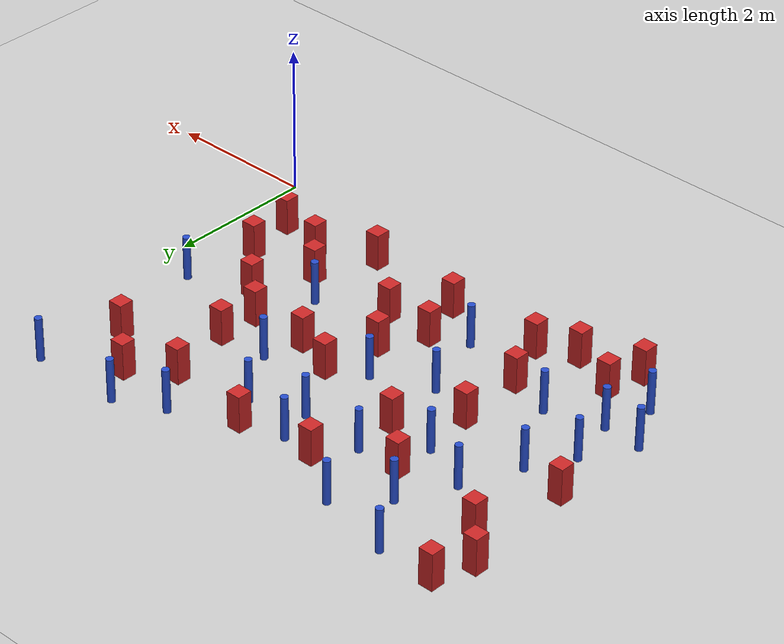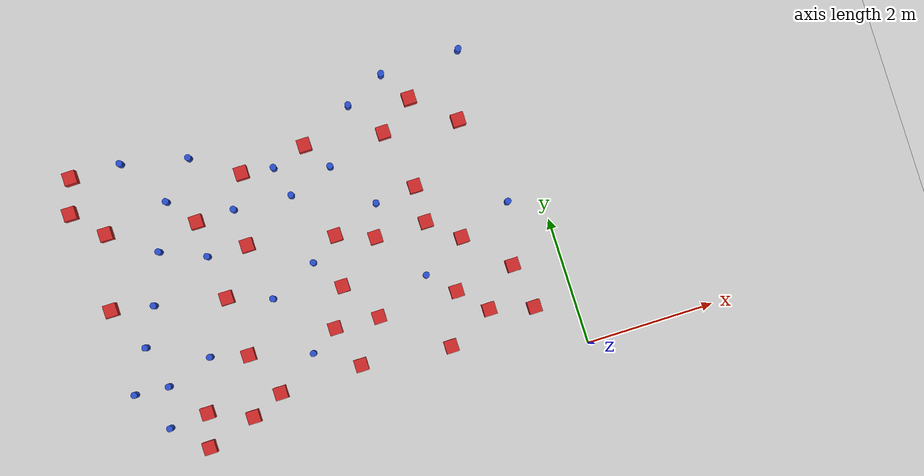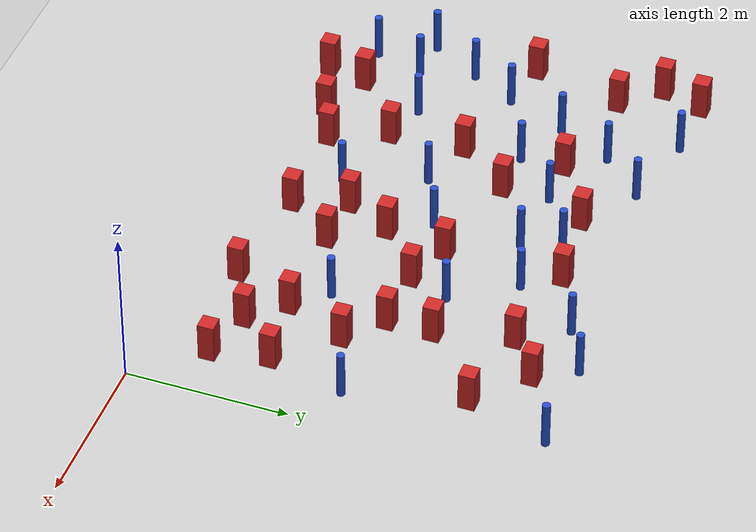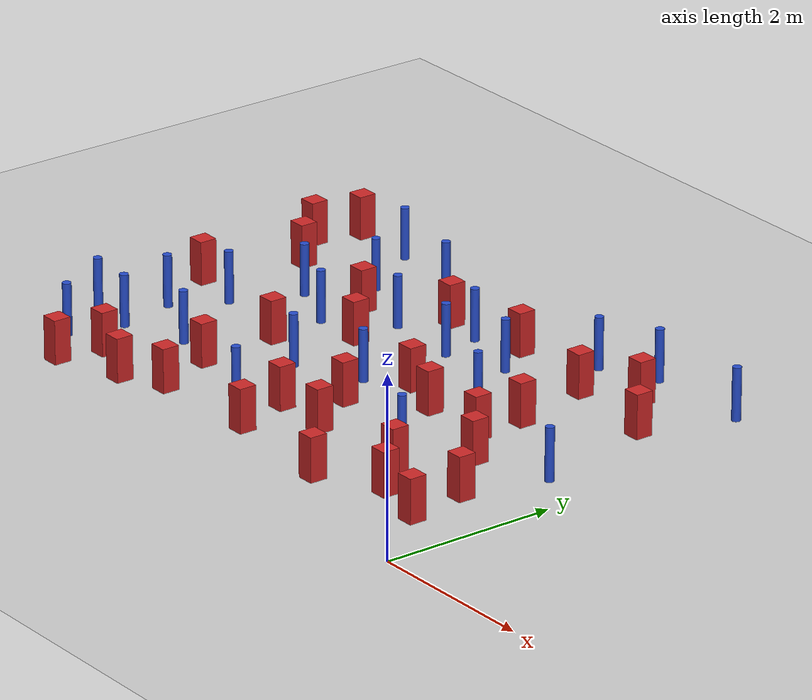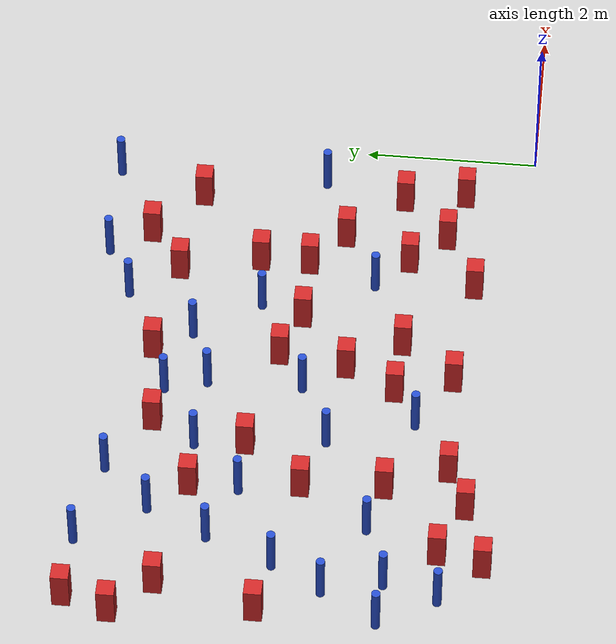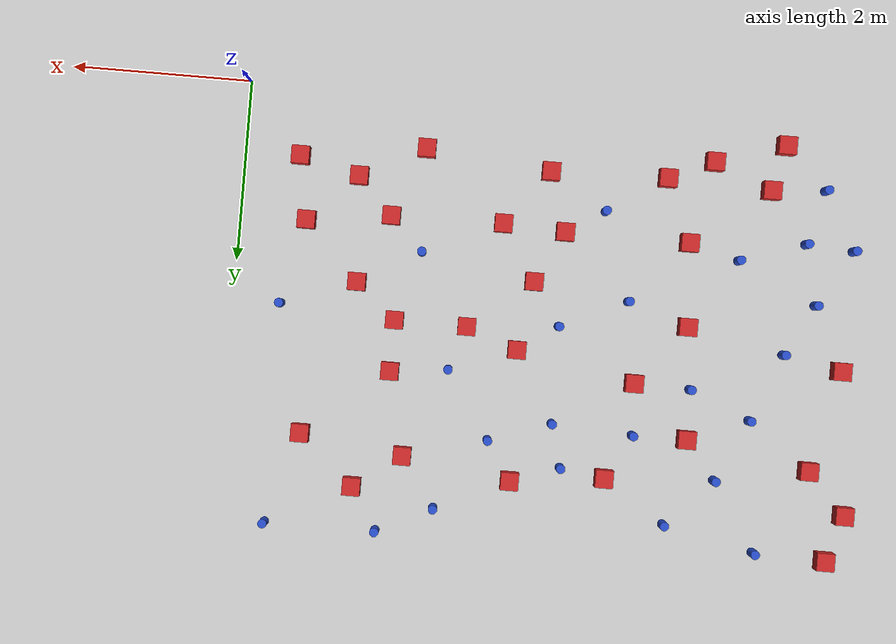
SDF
<sdf version="1.6">
 <world name="default">
  <model name="ground_plane">
   <static>1</static>
   <link name="link">
    <collision name="collision">
     <geometry><plane><normal>0 0 1</normal><size>100 100</size></plane></geometry>
     <surface><friction><ode><mu>100</mu><mu2>50</mu2></ode></friction></surface>
    </collision>
    <visual name="visual">
     <cast_shadows>0</cast_shadows>
     <geometry><plane><normal>0 0 1</normal><size>100 100</size></plane></geometry>
     <material>
      <ambient>1.0 1.0 1.0 1.0</ambient>
      <diffuse>0.8 0.8 0.8 1.0</diffuse>
      <specular>0.01 0.01 0.01 1.000000</specular>
     </material>
    </visual>
   </link>
  </model>
  <model name="square_post_obstacle8">
   <static>true</static>
   <pose>-3.33779751868 1.97403215349 -6.11067671241e-07 -5.50515727128e-06 -8.79689657224e-07 2.37013304536e-05</pose>
   <link name="link">
    <pose>0 0 0.25 0 -0 0</pose>
    <inertial>
     <mass>100</mass>
     <inertia>
      <ixx>0.166667</ixx>
      <ixy>0</ixy>
      <ixz>0</ixz>
      <iyy>0.166667</iyy>
      <iyz>0</iyz>
      <izz>0.166667</izz>
     </inertia>
    </inertial>
    <collision name="collision"><geometry><box><size>.2 .2 .5</size></box></geometry></collision>
    <visual name="visual">
     <geometry><box><size>.2 .2 .5</size></box></geometry>
     <material>
      <script><name>Gazebo/Red</name><uri>file://media/materials/scripts/gazebo.material</uri></script>
     </material>
    </visual>
   </link>
  </model>
  <model name="pole_obstacle6">
   <static>true</static>
   <pose>-6.01828911676 4.78866185865 -9.47619616065e-06 5.49618799737e-07 2.36310414037e-07 -1.55090534814e-07</pose>
   <link name="link">
    <pose>0 0 0.3 0 -0 0</pose>
    <inertial>
     <mass>1</mass>
     <inertia><ixx>0.145833</ixx><ixy>0</ixy><ixz>0</ixz><iyy>0.145833</iyy><iyz>0</iyz><izz>0.125</izz></inertia>
    </inertial>
    <collision name="collision">
     <geometry><cylinder><radius>0.05</radius><length>.6</length></cylinder></geometry>
    </collision>
    <visual name="visual">
     <geometry><cylinder><radius>0.05</radius><length>.6</length></cylinder></geometry>
     <material>
      <script><name>Gazebo/Blue</name><uri>file://media/materials/scripts/gazebo.material</uri></script>
     </material>
    </visual>
   </link>
  </model>
  <model name="square_post_obstacle10">
   <static>true</static>
   <pose>-4.5397672499 3.01273756281 -6.11067671241e-07 -5.50515727128e-06 -8.79689657224e-07 2.37013304536e-05</pose>
   <link name="link">
    <pose>0 0 0.25 0 -0 0</pose>
    <inertial>
     <mass>100</mass>
     <inertia>
      <ixx>0.166667</ixx>
      <ixy>0</ixy>
      <ixz>0</ixz>
      <iyy>0.166667</iyy>
      <iyz>0</iyz>
      <izz>0.166667</izz>
     </inertia>
    </inertial>
    <collision name="collision"><geometry><box><size>.2 .2 .5</size></box></geometry></collision>
    <visual name="visual">
     <geometry><box><size>.2 .2 .5</size></box></geometry>
     <material>
      <script><name>Gazebo/Red</name><uri>file://media/materials/scripts/gazebo.material</uri></script>
     </material>
    </visual>
   </link>
  </model>
  <model name="square_post_obstacle12">
   <static>true</static>
   <pose>-6.81449634374 4.81211950419 -6.11067671241e-07 -5.50515727128e-06 -8.79689657224e-07 2.37013304536e-05</pose>
   <link name="link">
    <pose>0 0 0.25 0 -0 0</pose>
    <inertial>
     <mass>100</mass>
     <inertia>
      <ixx>0.166667</ixx>
      <ixy>0</ixy>
      <ixz>0</ixz>
      <iyy>0.166667</iyy>
      <iyz>0</iyz>
      <izz>0.166667</izz>
     </inertia>
    </inertial>
    <collision name="collision"><geometry><box><size>.2 .2 .5</size></box></geometry></collision>
    <visual name="visual">
     <geometry><box><size>.2 .2 .5</size></box></geometry>
     <material>
      <script><name>Gazebo/Red</name><uri>file://media/materials/scripts/gazebo.material</uri></script>
     </material>
    </visual>
   </link>
  </model>
  <model name="square_post_obstacle14">
   <static>true</static>
   <pose>-1.82244334132 2.52893783839 -6.11067671241e-07 -5.50515727128e-06 -8.79689657224e-07 2.37013304536e-05</pose>
   <link name="link">
    <pose>0 0 0.25 0 -0 0</pose>
    <inertial>
     <mass>100</mass>
     <inertia>
      <ixx>0.166667</ixx>
      <ixy>0</ixy>
      <ixz>0</ixz>
      <iyy>0.166667</iyy>
      <iyz>0</iyz>
      <izz>0.166667</izz>
     </inertia>
    </inertial>
    <collision name="collision"><geometry><box><size>.2 .2 .5</size></box></geometry></collision>
    <visual name="visual">
     <geometry><box><size>.2 .2 .5</size></box></geometry>
     <material>
      <script><name>Gazebo/Red</name><uri>file://media/materials/scripts/gazebo.material</uri></script>
     </material>
    </visual>
   </link>
  </model>
  <model name="square_post_obstacle25">
   <static>true</static>
   <pose>-0.753819855754 1.49309940718 -6.11067671241e-07 -5.50515727128e-06 -8.79689657224e-07 2.37013304536e-05</pose>
   <link name="link">
    <pose>0 0 0.25 0 -0 0</pose>
    <inertial>
     <mass>100</mass>
     <inertia>
      <ixx>0.166667</ixx>
      <ixy>0</ixy>
      <ixz>0</ixz>
      <iyy>0.166667</iyy>
      <iyz>0</iyz>
      <izz>0.166667</izz>
     </inertia>
    </inertial>
    <collision name="collision"><geometry><box><size>.2 .2 .5</size></box></geometry></collision>
    <visual name="visual">
     <geometry><box><size>.2 .2 .5</size></box></geometry>
     <material>
      <script><name>Gazebo/Red</name><uri>file://media/materials/scripts/gazebo.material</uri></script>
     </material>
    </visual>
   </link>
  </model>
  <model name="pole_obstacle23">
   <static>true</static>
   <pose>-6.50298891282 0.69512425656 -9.47619616065e-06 5.49618799737e-07 2.36310414061e-07 -1.550905348e-07</pose>
   <link name="link">
    <pose>0 0 0.3 0 -0 0</pose>
    <inertial>
     <mass>1</mass>
     <inertia><ixx>0.145833</ixx><ixy>0</ixy><ixz>0</ixz><iyy>0.145833</iyy><iyz>0</iyz><izz>0.125</izz></inertia>
    </inertial>
    <collision name="collision">
     <geometry><cylinder><radius>0.05</radius><length>.6</length></cylinder></geometry>
    </collision>
    <visual name="visual">
     <geometry><cylinder><radius>0.05</radius><length>.6</length></cylinder></geometry>
     <material>
      <script><name>Gazebo/Blue</name><uri>file://media/materials/scripts/gazebo.material</uri></script>
     </material>
    </visual>
   </link>
  </model>
  <model name="pole_obstacle26">
   <static>true</static>
   <pose>-0.554028043169 4.89492762111 -9.47619616065e-06 5.49618799737e-07 2.36310414065e-07 -1.55090534796e-07</pose>
   <link name="link">
    <pose>0 0 0.3 0 -0 0</pose>
    <inertial>
     <mass>1</mass>
     <inertia><ixx>0.145833</ixx><ixy>0</ixy><ixz>0</ixz><iyy>0.145833</iyy><iyz>0</iyz><izz>0.125</izz></inertia>
    </inertial>
    <collision name="collision">
     <geometry><cylinder><radius>0.05</radius><length>.6</length></cylinder></geometry>
    </collision>
    <visual name="visual">
     <geometry><cylinder><radius>0.05</radius><length>.6</length></cylinder></geometry>
     <material>
      <script><name>Gazebo/Blue</name><uri>file://media/materials/scripts/gazebo.material</uri></script>
     </material>
    </visual>
   </link>
  </model>
  <model name="square_post_obstacle32">
   <static>true</static>
   <pose>-5.89141951244 0.744269989678 -6.11067671241e-07 -5.50515727128e-06 -8.79689657224e-07 2.37013304536e-05</pose>
   <link name="link">
    <pose>0 0 0.25 0 -0 0</pose>
    <inertial>
     <mass>100</mass>
     <inertia>
      <ixx>0.166667</ixx>
      <ixy>0</ixy>
      <ixz>0</ixz>
      <iyy>0.166667</iyy>
      <iyz>0</iyz>
      <izz>0.166667</izz>
     </inertia>
    </inertial>
    <collision name="collision"><geometry><box><size>.2 .2 .5</size></box></geometry></collision>
    <visual name="visual">
     <geometry><box><size>.2 .2 .5</size></box></geometry>
     <material>
      <script><name>Gazebo/Red</name><uri>file://media/materials/scripts/gazebo.material</uri></script>
     </material>
    </visual>
   </link>
  </model>
  <model name="square_post_obstacle33">
   <static>true</static>
   <pose>-3.42648207523 0.735322370239 -6.11067671241e-07 -5.50515727128e-06 -8.79689657224e-07 2.37013304536e-05</pose>
   <link name="link">
    <pose>0 0 0.25 0 -0 0</pose>
    <inertial>
     <mass>100</mass>
     <inertia>
      <ixx>0.166667</ixx>
      <ixy>0</ixy>
      <ixz>0</ixz>
      <iyy>0.166667</iyy>
      <iyz>0</iyz>
      <izz>0.166667</izz>
     </inertia>
    </inertial>
    <collision name="collision"><geometry><box><size>.2 .2 .5</size></box></geometry></collision>
    <visual name="visual">
     <geometry><box><size>.2 .2 .5</size></box></geometry>
     <material>
      <script><name>Gazebo/Red</name><uri>file://media/materials/scripts/gazebo.material</uri></script>
     </material>
    </visual>
   </link>
  </model>
  <model name="pole_obstacle31">
   <static>true</static>
   <pose>-4.07116642697 1.12520285323 -9.47619616065e-06 5.49618799738e-07 2.36310414071e-07 -1.55090534796e-07</pose>
   <link name="link">
    <pose>0 0 0.3 0 -0 0</pose>
    <inertial>
     <mass>1</mass>
     <inertia><ixx>0.145833</ixx><ixy>0</ixy><ixz>0</ixz><iyy>0.145833</iyy><iyz>0</iyz><izz>0.125</izz></inertia>
    </inertial>
    <collision name="collision">
     <geometry><cylinder><radius>0.05</radius><length>.6</length></cylinder></geometry>
    </collision>
    <visual name="visual">
     <geometry><cylinder><radius>0.05</radius><length>.6</length></cylinder></geometry>
     <material>
      <script><name>Gazebo/Blue</name><uri>file://media/materials/scripts/gazebo.material</uri></script>
     </material>
    </visual>
   </link>
  </model>
  <model name="pole_obstacle32">
   <static>true</static>
   <pose>-3.79601591526 4.02080855263 -9.47619616065e-06 5.49618799738e-07 2.36310414077e-07 -1.55090534791e-07</pose>
   <link name="link">
    <pose>0 0 0.3 0 -0 0</pose>
    <inertial>
     <mass>1</mass>
     <inertia><ixx>0.145833</ixx><ixy>0</ixy><ixz>0</ixz><iyy>0.145833</iyy><iyz>0</iyz><izz>0.125</izz></inertia>
    </inertial>
    <collision name="collision">
     <geometry><cylinder><radius>0.05</radius><length>.6</length></cylinder></geometry>
    </collision>
    <visual name="visual">
     <geometry><cylinder><radius>0.05</radius><length>.6</length></cylinder></geometry>
     <material>
      <script><name>Gazebo/Blue</name><uri>file://media/materials/scripts/gazebo.material</uri></script>
     </material>
    </visual>
   </link>
  </model>
  <model name="pole_obstacle39">
   <static>true</static>
   <pose>-6.33148483358 1.30894092357 -9.47619616065e-06 5.49618799738e-07 2.36310414071e-07 -1.55090534796e-07</pose>
   <link name="link">
    <pose>0 0 0.3 0 -0 0</pose>
    <inertial>
     <mass>1</mass>
     <inertia><ixx>0.145833</ixx><ixy>0</ixy><ixz>0</ixz><iyy>0.145833</iyy><iyz>0</iyz><izz>0.125</izz></inertia>
    </inertial>
    <collision name="collision">
     <geometry><cylinder><radius>0.05</radius><length>.6</length></cylinder></geometry>
    </collision>
    <visual name="visual">
     <geometry><cylinder><radius>0.05</radius><length>.6</length></cylinder></geometry>
     <material>
      <script><name>Gazebo/Blue</name><uri>file://media/materials/scripts/gazebo.material</uri></script>
     </material>
    </visual>
   </link>
  </model>
  <model name="pole_obstacle40">
   <static>true</static>
   <pose>-5.85839685836 3.32301820173 -9.47619616065e-06 5.49618799738e-07 2.36310414051e-07 -1.55090534805e-07</pose>
   <link name="link">
    <pose>0 0 0.3 0 -0 0</pose>
    <inertial>
     <mass>1</mass>
     <inertia><ixx>0.145833</ixx><ixy>0</ixy><ixz>0</ixz><iyy>0.145833</iyy><iyz>0</iyz><izz>0.125</izz></inertia>
    </inertial>
    <collision name="collision">
     <geometry><cylinder><radius>0.05</radius><length>.6</length></cylinder></geometry>
    </collision>
    <visual name="visual">
     <geometry><cylinder><radius>0.05</radius><length>.6</length></cylinder></geometry>
     <material>
      <script><name>Gazebo/Blue</name><uri>file://media/materials/scripts/gazebo.material</uri></script>
     </material>
    </visual>
   </link>
  </model>
  <model name="square_post_obstacle47">
   <static>true</static>
   <pose>-2.63031752527 2.53491409045 -6.11067671241e-07 -5.50515727128e-06 -8.79689657224e-07 2.37013304536e-05</pose>
   <link name="link">
    <pose>0 0 0.25 0 -0 0</pose>
    <inertial>
     <mass>100</mass>
     <inertia>
      <ixx>0.166667</ixx>
      <ixy>0</ixy>
      <ixz>0</ixz>
      <iyy>0.166667</iyy>
      <iyz>0</iyz>
      <izz>0.166667</izz>
     </inertia>
    </inertial>
    <collision name="collision"><geometry><box><size>.2 .2 .5</size></box></geometry></collision>
    <visual name="visual">
     <geometry><box><size>.2 .2 .5</size></box></geometry>
     <material>
      <script><name>Gazebo/Red</name><uri>file://media/materials/scripts/gazebo.material</uri></script>
     </material>
    </visual>
   </link>
  </model>
  <model name="square_post_obstacle49">
   <static>true</static>
   <pose>-3.24506717129 4.20992008156 -6.11067671241e-07 -5.50515727128e-06 -8.79689657224e-07 2.37013304536e-05</pose>
   <link name="link">
    <pose>0 0 0.25 0 -0 0</pose>
    <inertial>
     <mass>100</mass>
     <inertia>
      <ixx>0.166667</ixx>
      <ixy>0</ixy>
      <ixz>0</ixz>
      <iyy>0.166667</iyy>
      <iyz>0</iyz>
      <izz>0.166667</izz>
     </inertia>
    </inertial>
    <collision name="collision"><geometry><box><size>.2 .2 .5</size></box></geometry></collision>
    <visual name="visual">
     <geometry><box><size>.2 .2 .5</size></box></geometry>
     <material>
      <script><name>Gazebo/Red</name><uri>file://media/materials/scripts/gazebo.material</uri></script>
     </material>
    </visual>
   </link>
  </model>
  <model name="square_post_obstacle52">
   <static>true</static>
   <pose>-1.36891883287 2.13751784845 -6.11067671241e-07 -5.50515727128e-06 -8.79689657224e-07 2.37013304536e-05</pose>
   <link name="link">
    <pose>0 0 0.25 0 -0 0</pose>
    <inertial>
     <mass>100</mass>
     <inertia>
      <ixx>0.166667</ixx>
      <ixy>0</ixy>
      <ixz>0</ixz>
      <iyy>0.166667</iyy>
      <iyz>0</iyz>
      <izz>0.166667</izz>
     </inertia>
    </inertial>
    <collision name="collision"><geometry><box><size>.2 .2 .5</size></box></geometry></collision>
    <visual name="visual">
     <geometry><box><size>.2 .2 .5</size></box></geometry>
     <material>
      <script><name>Gazebo/Red</name><uri>file://media/materials/scripts/gazebo.material</uri></script>
     </material>
    </visual>
   </link>
  </model>
  <model name="square_post_obstacle67">
   <static>true</static>
   <pose>-2.03052002328 4.02872236646 -6.11067671241e-07 -5.50515727128e-06 -8.79689657224e-07 2.37013304536e-05</pose>
   <link name="link">
    <pose>0 0 0.25 0 -0 0</pose>
    <inertial>
     <mass>100</mass>
     <inertia>
      <ixx>0.166667</ixx>
      <ixy>0</ixy>
      <ixz>0</ixz>
      <iyy>0.166667</iyy>
      <iyz>0</iyz>
      <izz>0.166667</izz>
     </inertia>
    </inertial>
    <collision name="collision"><geometry><box><size>.2 .2 .5</size></box></geometry></collision>
    <visual name="visual">
     <geometry><box><size>.2 .2 .5</size></box></geometry>
     <material>
      <script><name>Gazebo/Red</name><uri>file://media/materials/scripts/gazebo.material</uri></script>
     </material>
    </visual>
   </link>
  </model>
  <model name="pole_obstacle68">
   <static>true</static>
   <pose>-5.59704262685 1.55074622859 -9.47619616065e-06 5.49618799738e-07 2.36310414071e-07 -1.55090534796e-07</pose>
   <link name="link">
    <pose>0 0 0.3 0 -0 0</pose>
    <inertial>
     <mass>1</mass>
     <inertia><ixx>0.145833</ixx><ixy>0</ixy><ixz>0</ixz><iyy>0.145833</iyy><iyz>0</iyz><izz>0.125</izz></inertia>
    </inertial>
    <collision name="collision">
     <geometry><cylinder><radius>0.05</radius><length>.6</length></cylinder></geometry>
    </collision>
    <visual name="visual">
     <geometry><cylinder><radius>0.05</radius><length>.6</length></cylinder></geometry>
     <material>
      <script><name>Gazebo/Blue</name><uri>file://media/materials/scripts/gazebo.material</uri></script>
     </material>
    </visual>
   </link>
  </model>
  <model name="square_post_obstacle77">
   <static>true</static>
   <pose>-0.631489387228 0.783052815088 -6.11067671241e-07 -5.50515727128e-06 -8.79689657224e-07 2.37013304536e-05</pose>
   <link name="link">
    <pose>0 0 0.25 0 -0 0</pose>
    <inertial>
     <mass>100</mass>
     <inertia>
      <ixx>0.166667</ixx>
      <ixy>0</ixy>
      <ixz>0</ixz>
      <iyy>0.166667</iyy>
      <iyz>0</iyz>
      <izz>0.166667</izz>
     </inertia>
    </inertial>
    <collision name="collision"><geometry><box><size>.2 .2 .5</size></box></geometry></collision>
    <visual name="visual">
     <geometry><box><size>.2 .2 .5</size></box></geometry>
     <material>
      <script><name>Gazebo/Red</name><uri>file://media/materials/scripts/gazebo.material</uri></script>
     </material>
    </visual>
   </link>
  </model>
  <model name="pole_obstacle99">
   <static>true</static>
   <pose>-2.06406684372 1.74582026015 -9.47619616065e-06 5.49618799737e-07 2.36310414072e-07 -1.55090534793e-07</pose>
   <link name="link">
    <pose>0 0 0.3 0 -0 0</pose>
    <inertial>
     <mass>1</mass>
     <inertia><ixx>0.145833</ixx><ixy>0</ixy><ixz>0</ixz><iyy>0.145833</iyy><iyz>0</iyz><izz>0.125</izz></inertia>
    </inertial>
    <collision name="collision">
     <geometry><cylinder><radius>0.05</radius><length>.6</length></cylinder></geometry>
    </collision>
    <visual name="visual">
     <geometry><cylinder><radius>0.05</radius><length>.6</length></cylinder></geometry>
     <material>
      <script><name>Gazebo/Blue</name><uri>file://media/materials/scripts/gazebo.material</uri></script>
     </material>
    </visual>
   </link>
  </model>
  <model name="square_post_obstacle101">
   <static>true</static>
   <pose>-1.3012705276 0.956762348289 -6.11067671241e-07 -5.50515727128e-06 -8.79689657224e-07 2.37013304536e-05</pose>
   <link name="link">
    <pose>0 0 0.25 0 -0 0</pose>
    <inertial>
     <mass>100</mass>
     <inertia>
      <ixx>0.166667</ixx>
      <ixy>0</ixy>
      <ixz>0</ixz>
      <iyy>0.166667</iyy>
      <iyz>0</iyz>
      <izz>0.166667</izz>
     </inertia>
    </inertial>
    <collision name="collision"><geometry><box><size>.2 .2 .5</size></box></geometry></collision>
    <visual name="visual">
     <geometry><box><size>.2 .2 .5</size></box></geometry>
     <material>
      <script><name>Gazebo/Red</name><uri>file://media/materials/scripts/gazebo.material</uri></script>
     </material>
    </visual>
   </link>
  </model>
  <model name="pole_obstacle116">
   <static>true</static>
   <pose>-3.66398527971 3.53734802346 -9.47619616065e-06 5.49618799737e-07 2.36310414067e-07 -1.55090534797e-07</pose>
   <link name="link">
    <pose>0 0 0.3 0 -0 0</pose>
    <inertial>
     <mass>1</mass>
     <inertia><ixx>0.145833</ixx><ixy>0</ixy><ixz>0</ixz><iyy>0.145833</iyy><iyz>0</iyz><izz>0.125</izz></inertia>
    </inertial>
    <collision name="collision">
     <geometry><cylinder><radius>0.05</radius><length>.6</length></cylinder></geometry>
    </collision>
    <visual name="visual">
     <geometry><cylinder><radius>0.05</radius><length>.6</length></cylinder></geometry>
     <material>
      <script><name>Gazebo/Blue</name><uri>file://media/materials/scripts/gazebo.material</uri></script>
     </material>
    </visual>
   </link>
  </model>
  <model name="pole_obstacle118">
   <static>true</static>
   <pose>-0.533381064138 2.44212809892 -9.47619616065e-06 5.49618799737e-07 2.36310414065e-07 -1.55090534797e-07</pose>
   <link name="link">
    <pose>0 0 0.3 0 -0 0</pose>
    <inertial>
     <mass>1</mass>
     <inertia><ixx>0.145833</ixx><ixy>0</ixy><ixz>0</ixz><iyy>0.145833</iyy><iyz>0</iyz><izz>0.125</izz></inertia>
    </inertial>
    <collision name="collision">
     <geometry><cylinder><radius>0.05</radius><length>.6</length></cylinder></geometry>
    </collision>
    <visual name="visual">
     <geometry><cylinder><radius>0.05</radius><length>.6</length></cylinder></geometry>
     <material>
      <script><name>Gazebo/Blue</name><uri>file://media/materials/scripts/gazebo.material</uri></script>
     </material>
    </visual>
   </link>
  </model>
  <model name="square_post_obstacle111">
   <static>true</static>
   <pose>-0.87724760103 3.86657979295 -6.11067671241e-07 -5.50515727128e-06 -8.79689657224e-07 2.37013304536e-05</pose>
   <link name="link">
    <pose>0 0 0.25 0 -0 0</pose>
    <inertial>
     <mass>100</mass>
     <inertia>
      <ixx>0.166667</ixx>
      <ixy>0</ixy>
      <ixz>0</ixz>
      <iyy>0.166667</iyy>
      <iyz>0</iyz>
      <izz>0.166667</izz>
     </inertia>
    </inertial>
    <collision name="collision"><geometry><box><size>.2 .2 .5</size></box></geometry></collision>
    <visual name="visual">
     <geometry><box><size>.2 .2 .5</size></box></geometry>
     <material>
      <script><name>Gazebo/Red</name><uri>file://media/materials/scripts/gazebo.material</uri></script>
     </material>
    </visual>
   </link>
  </model>
  <model name="pole_obstacle120">
   <static>true</static>
   <pose>-6.49158779333 1.98344707007 -9.47619616065e-06 5.49618799737e-07 2.36310414075e-07 -1.55090534793e-07</pose>
   <link name="link">
    <pose>0 0 0.3 0 -0 0</pose>
    <inertial>
     <mass>1</mass>
     <inertia><ixx>0.145833</ixx><ixy>0</ixy><ixz>0</ixz><iyy>0.145833</iyy><iyz>0</iyz><izz>0.125</izz></inertia>
    </inertial>
    <collision name="collision">
     <geometry><cylinder><radius>0.05</radius><length>.6</length></cylinder></geometry>
    </collision>
    <visual name="visual">
     <geometry><cylinder><radius>0.05</radius><length>.6</length></cylinder></geometry>
     <material>
      <script><name>Gazebo/Blue</name><uri>file://media/materials/scripts/gazebo.material</uri></script>
     </material>
    </visual>
   </link>
  </model>
  <model name="pole_obstacle124">
   <static>true</static>
   <pose>-3.6532623483 2.44949249792 -9.47619616065e-06 5.49618799737e-07 2.36310414067e-07 -1.55090534797e-07</pose>
   <link name="link">
    <pose>0 0 0.3 0 -0 0</pose>
    <inertial>
     <mass>1</mass>
     <inertia><ixx>0.145833</ixx><ixy>0</ixy><ixz>0</ixz><iyy>0.145833</iyy><iyz>0</iyz><izz>0.125</izz></inertia>
    </inertial>
    <collision name="collision">
     <geometry><cylinder><radius>0.05</radius><length>.6</length></cylinder></geometry>
    </collision>
    <visual name="visual">
     <geometry><cylinder><radius>0.05</radius><length>.6</length></cylinder></geometry>
     <material>
      <script><name>Gazebo/Blue</name><uri>file://media/materials/scripts/gazebo.material</uri></script>
     </material>
    </visual>
   </link>
  </model>
  <model name="pole_obstacle127">
   <static>true</static>
   <pose>-4.56987626431 3.59485742047 -9.47619616065e-06 5.49618799738e-07 2.36310414051e-07 -1.55090534805e-07</pose>
   <link name="link">
    <pose>0 0 0.3 0 -0 0</pose>
    <inertial>
     <mass>1</mass>
     <inertia><ixx>0.145833</ixx><ixy>0</ixy><ixz>0</ixz><iyy>0.145833</iyy><iyz>0</iyz><izz>0.125</izz></inertia>
    </inertial>
    <collision name="collision">
     <geometry><cylinder><radius>0.05</radius><length>.6</length></cylinder></geometry>
    </collision>
    <visual name="visual">
     <geometry><cylinder><radius>0.05</radius><length>.6</length></cylinder></geometry>
     <material>
      <script><name>Gazebo/Blue</name><uri>file://media/materials/scripts/gazebo.material</uri></script>
     </material>
    </visual>
   </link>
  </model>
  <model name="pole_obstacle129">
   <static>true</static>
   <pose>-2.42056036611 4.58614837384 -9.47619616065e-06 5.49618799738e-07 2.3631041406e-07 -1.55090534801e-07</pose>
   <link name="link">
    <pose>0 0 0.3 0 -0 0</pose>
    <inertial>
     <mass>1</mass>
     <inertia><ixx>0.145833</ixx><ixy>0</ixy><ixz>0</ixz><iyy>0.145833</iyy><iyz>0</iyz><izz>0.125</izz></inertia>
    </inertial>
    <collision name="collision">
     <geometry><cylinder><radius>0.05</radius><length>.6</length></cylinder></geometry>
    </collision>
    <visual name="visual">
     <geometry><cylinder><radius>0.05</radius><length>.6</length></cylinder></geometry>
     <material>
      <script><name>Gazebo/Blue</name><uri>file://media/materials/scripts/gazebo.material</uri></script>
     </material>
    </visual>
   </link>
  </model>
  <model name="pole_obstacle132">
   <static>true</static>
   <pose>-4.40729199947 2.10904945063 -9.47619616065e-06 5.49618799738e-07 2.36310414051e-07 -1.55090534805e-07</pose>
   <link name="link">
    <pose>0 0 0.3 0 -0 0</pose>
    <inertial>
     <mass>1</mass>
     <inertia><ixx>0.145833</ixx><ixy>0</ixy><ixz>0</ixz><iyy>0.145833</iyy><iyz>0</iyz><izz>0.125</izz></inertia>
    </inertial>
    <collision name="collision">
     <geometry><cylinder><radius>0.05</radius><length>.6</length></cylinder></geometry>
    </collision>
    <visual name="visual">
     <geometry><cylinder><radius>0.05</radius><length>.6</length></cylinder></geometry>
     <material>
      <script><name>Gazebo/Blue</name><uri>file://media/materials/scripts/gazebo.material</uri></script>
     </material>
    </visual>
   </link>
  </model>
  <model name="pole_obstacle135">
   <static>true</static>
   <pose>-6.86725875306 1.34475974427 -9.47619616065e-06 5.49618799738e-07 2.36310414071e-07 -1.55090534796e-07</pose>
   <link name="link">
    <pose>0 0 0.3 0 -0 0</pose>
    <inertial>
     <mass>1</mass>
     <inertia><ixx>0.145833</ixx><ixy>0</ixy><ixz>0</ixz><iyy>0.145833</iyy><iyz>0</iyz><izz>0.125</izz></inertia>
    </inertial>
    <collision name="collision">
     <geometry><cylinder><radius>0.05</radius><length>.6</length></cylinder></geometry>
    </collision>
    <visual name="visual">
     <geometry><cylinder><radius>0.05</radius><length>.6</length></cylinder></geometry>
     <material>
      <script><name>Gazebo/Blue</name><uri>file://media/materials/scripts/gazebo.material</uri></script>
     </material>
    </visual>
   </link>
  </model>
  <model name="square_post_obstacle118">
   <static>true</static>
   <pose>-1.69367767173 1.37091161448 -6.11067671241e-07 -5.50515727128e-06 -8.79689657224e-07 2.37013304536e-05</pose>
   <link name="link">
    <pose>0 0 0.25 0 -0 0</pose>
    <inertial>
     <mass>100</mass>
     <inertia>
      <ixx>0.166667</ixx>
      <ixy>0</ixy>
      <ixz>0</ixz>
      <iyy>0.166667</iyy>
      <iyz>0</iyz>
      <izz>0.166667</izz>
     </inertia>
    </inertial>
    <collision name="collision"><geometry><box><size>.2 .2 .5</size></box></geometry></collision>
    <visual name="visual">
     <geometry><box><size>.2 .2 .5</size></box></geometry>
     <material>
      <script><name>Gazebo/Red</name><uri>file://media/materials/scripts/gazebo.material</uri></script>
     </material>
    </visual>
   </link>
  </model>
  <model name="square_post_obstacle126">
   <static>true</static>
   <pose>-5.23751672144 0.476788350861 -6.11067671241e-07 -5.50515727128e-06 -8.79689657224e-07 2.37013304536e-05</pose>
   <link name="link">
    <pose>0 0 0.25 0 -0 0</pose>
    <inertial>
     <mass>100</mass>
     <inertia>
      <ixx>0.166667</ixx>
      <ixy>0</ixy>
      <ixz>0</ixz>
      <iyy>0.166667</iyy>
      <iyz>0</iyz>
      <izz>0.166667</izz>
     </inertia>
    </inertial>
    <collision name="collision"><geometry><box><size>.2 .2 .5</size></box></geometry></collision>
    <visual name="visual">
     <geometry><box><size>.2 .2 .5</size></box></geometry>
     <material>
      <script><name>Gazebo/Red</name><uri>file://media/materials/scripts/gazebo.material</uri></script>
     </material>
    </visual>
   </link>
  </model>
  <model name="square_post_obstacle136">
   <static>true</static>
   <pose>-1.81677196748 3.09966837451 -6.11067671241e-07 -5.50515727128e-06 -8.79689657224e-07 2.37013304536e-05</pose>
   <link name="link">
    <pose>0 0 0.25 0 -0 0</pose>
    <inertial>
     <mass>100</mass>
     <inertia>
      <ixx>0.166667</ixx>
      <ixy>0</ixy>
      <ixz>0</ixz>
      <iyy>0.166667</iyy>
      <iyz>0</iyz>
      <izz>0.166667</izz>
     </inertia>
    </inertial>
    <collision name="collision"><geometry><box><size>.2 .2 .5</size></box></geometry></collision>
    <visual name="visual">
     <geometry><box><size>.2 .2 .5</size></box></geometry>
     <material>
      <script><name>Gazebo/Red</name><uri>file://media/materials/scripts/gazebo.material</uri></script>
     </material>
    </visual>
   </link>
  </model>
  <model name="square_post_obstacle137">
   <static>true</static>
   <pose>-1.49686863105 4.41279165944 -6.11067671241e-07 -5.50515727128e-06 -8.79689657224e-07 2.37013304536e-05</pose>
   <link name="link">
    <pose>0 0 0.25 0 -0 0</pose>
    <inertial>
     <mass>100</mass>
     <inertia>
      <ixx>0.166667</ixx>
      <ixy>0</ixy>
      <ixz>0</ixz>
      <iyy>0.166667</iyy>
      <iyz>0</iyz>
      <izz>0.166667</izz>
     </inertia>
    </inertial>
    <collision name="collision"><geometry><box><size>.2 .2 .5</size></box></geometry></collision>
    <visual name="visual">
     <geometry><box><size>.2 .2 .5</size></box></geometry>
     <material>
      <script><name>Gazebo/Red</name><uri>file://media/materials/scripts/gazebo.material</uri></script>
     </material>
    </visual>
   </link>
  </model>
  <model name="pole_obstacle151">
   <static>true</static>
   <pose>-4.9922645357 4.55771888611 -9.47619616065e-06 5.49618799737e-07 2.36310414037e-07 -1.55090534814e-07</pose>
   <link name="link">
    <pose>0 0 0.3 0 -0 0</pose>
    <inertial>
     <mass>1</mass>
     <inertia><ixx>0.145833</ixx><ixy>0</ixy><ixz>0</ixz><iyy>0.145833</iyy><iyz>0</iyz><izz>0.125</izz></inertia>
    </inertial>
    <collision name="collision">
     <geometry><cylinder><radius>0.05</radius><length>.6</length></cylinder></geometry>
    </collision>
    <visual name="visual">
     <geometry><cylinder><radius>0.05</radius><length>.6</length></cylinder></geometry>
     <material>
      <script><name>Gazebo/Blue</name><uri>file://media/materials/scripts/gazebo.material</uri></script>
     </material>
    </visual>
   </link>
  </model>
  <model name="square_post_obstacle142">
   <static>true</static>
   <pose>-2.0263265988 0.591311791044 -6.11067671241e-07 -5.50515727128e-06 -8.79689657224e-07 2.37013304536e-05</pose>
   <link name="link">
    <pose>0 0 0.25 0 -0 0</pose>
    <inertial>
     <mass>100</mass>
     <inertia>
      <ixx>0.166667</ixx>
      <ixy>0</ixy>
      <ixz>0</ixz>
      <iyy>0.166667</iyy>
      <iyz>0</iyz>
      <izz>0.166667</izz>
     </inertia>
    </inertial>
    <collision name="collision"><geometry><box><size>.2 .2 .5</size></box></geometry></collision>
    <visual name="visual">
     <geometry><box><size>.2 .2 .5</size></box></geometry>
     <material>
      <script><name>Gazebo/Red</name><uri>file://media/materials/scripts/gazebo.material</uri></script>
     </material>
    </visual>
   </link>
  </model>
  <model name="square_post_obstacle149">
   <static>true</static>
   <pose>-5.08300298079 2.33871254276 -6.11067671241e-07 -5.50515727128e-06 -8.79689657224e-07 2.37013304536e-05</pose>
   <link name="link">
    <pose>0 0 0.25 0 -0 0</pose>
    <inertial>
     <mass>100</mass>
     <inertia>
      <ixx>0.166667</ixx>
      <ixy>0</ixy>
      <ixz>0</ixz>
      <iyy>0.166667</iyy>
      <iyz>0</iyz>
      <izz>0.166667</izz>
     </inertia>
    </inertial>
    <collision name="collision"><geometry><box><size>.2 .2 .5</size></box></geometry></collision>
    <visual name="visual">
     <geometry><box><size>.2 .2 .5</size></box></geometry>
     <material>
      <script><name>Gazebo/Red</name><uri>file://media/materials/scripts/gazebo.material</uri></script>
     </material>
    </visual>
   </link>
  </model>
  <model name="pole_obstacle159">
   <static>true</static>
   <pose>-1.79480919675 4.88940038034 -9.47619616065e-06 5.49618799737e-07 2.36310414061e-07 -1.550905348e-07</pose>
   <link name="link">
    <pose>0 0 0.3 0 -0 0</pose>
    <inertial>
     <mass>1</mass>
     <inertia><ixx>0.145833</ixx><ixy>0</ixy><ixz>0</ixz><iyy>0.145833</iyy><iyz>0</iyz><izz>0.125</izz></inertia>
    </inertial>
    <collision name="collision">
     <geometry><cylinder><radius>0.05</radius><length>.6</length></cylinder></geometry>
    </collision>
    <visual name="visual">
     <geometry><cylinder><radius>0.05</radius><length>.6</length></cylinder></geometry>
     <material>
      <script><name>Gazebo/Blue</name><uri>file://media/materials/scripts/gazebo.material</uri></script>
     </material>
    </visual>
   </link>
  </model>
  <model name="square_post_obstacle154">
   <static>true</static>
   <pose>-3.63839162663 1.393853797 -6.11067671241e-07 -5.50515727128e-06 -8.79689657224e-07 2.37013304536e-05</pose>
   <link name="link">
    <pose>0 0 0.25 0 -0 0</pose>
    <inertial>
     <mass>100</mass>
     <inertia>
      <ixx>0.166667</ixx>
      <ixy>0</ixy>
      <ixz>0</ixz>
      <iyy>0.166667</iyy>
      <iyz>0</iyz>
      <izz>0.166667</izz>
     </inertia>
    </inertial>
    <collision name="collision"><geometry><box><size>.2 .2 .5</size></box></geometry></collision>
    <visual name="visual">
     <geometry><box><size>.2 .2 .5</size></box></geometry>
     <material>
      <script><name>Gazebo/Red</name><uri>file://media/materials/scripts/gazebo.material</uri></script>
     </material>
    </visual>
   </link>
  </model>
  <model name="pole_obstacle166">
   <static>true</static>
   <pose>-5.17080530269 3.030909377 -9.47619616065e-06 5.49618799738e-07 2.36310414051e-07 -1.55090534805e-07</pose>
   <link name="link">
    <pose>0 0 0.3 0 -0 0</pose>
    <inertial>
     <mass>1</mass>
     <inertia><ixx>0.145833</ixx><ixy>0</ixy><ixz>0</ixz><iyy>0.145833</iyy><iyz>0</iyz><izz>0.125</izz></inertia>
    </inertial>
    <collision name="collision">
     <geometry><cylinder><radius>0.05</radius><length>.6</length></cylinder></geometry>
    </collision>
    <visual name="visual">
     <geometry><cylinder><radius>0.05</radius><length>.6</length></cylinder></geometry>
     <material>
      <script><name>Gazebo/Blue</name><uri>file://media/materials/scripts/gazebo.material</uri></script>
     </material>
    </visual>
   </link>
  </model>
  <model name="square_post_obstacle168">
   <static>true</static>
   <pose>-5.17295363668 3.58960219869 -6.11067671241e-07 -5.50515727128e-06 -8.79689657224e-07 2.37013304536e-05</pose>
   <link name="link">
    <pose>0 0 0.25 0 -0 0</pose>
    <inertial>
     <mass>100</mass>
     <inertia>
      <ixx>0.166667</ixx>
      <ixy>0</ixy>
      <ixz>0</ixz>
      <iyy>0.166667</iyy>
      <iyz>0</iyz>
      <izz>0.166667</izz>
     </inertia>
    </inertial>
    <collision name="collision"><geometry><box><size>.2 .2 .5</size></box></geometry></collision>
    <visual name="visual">
     <geometry><box><size>.2 .2 .5</size></box></geometry>
     <material>
      <script><name>Gazebo/Red</name><uri>file://media/materials/scripts/gazebo.material</uri></script>
     </material>
    </visual>
   </link>
  </model>
  <model name="pole_obstacle178">
   <static>true</static>
   <pose>-2.46294521044 3.02827346476 -9.47619616065e-06 5.49618799737e-07 2.36310414051e-07 -1.55090534807e-07</pose>
   <link name="link">
    <pose>0 0 0.3 0 -0 0</pose>
    <inertial>
     <mass>1</mass>
     <inertia><ixx>0.145833</ixx><ixy>0</ixy><ixz>0</ixz><iyy>0.145833</iyy><iyz>0</iyz><izz>0.125</izz></inertia>
    </inertial>
    <collision name="collision">
     <geometry><cylinder><radius>0.05</radius><length>.6</length></cylinder></geometry>
    </collision>
    <visual name="visual">
     <geometry><cylinder><radius>0.05</radius><length>.6</length></cylinder></geometry>
     <material>
      <script><name>Gazebo/Blue</name><uri>file://media/materials/scripts/gazebo.material</uri></script>
     </material>
    </visual>
   </link>
  </model>
  <model name="pole_obstacle180">
   <static>true</static>
   <pose>-6.17787962967 2.5598085128 -9.47619616065e-06 5.49618799738e-07 2.36310414051e-07 -1.55090534805e-07</pose>
   <link name="link">
    <pose>0 0 0.3 0 -0 0</pose>
    <inertial>
     <mass>1</mass>
     <inertia><ixx>0.145833</ixx><ixy>0</ixy><ixz>0</ixz><iyy>0.145833</iyy><iyz>0</iyz><izz>0.125</izz></inertia>
    </inertial>
    <collision name="collision">
     <geometry><cylinder><radius>0.05</radius><length>.6</length></cylinder></geometry>
    </collision>
    <visual name="visual">
     <geometry><cylinder><radius>0.05</radius><length>.6</length></cylinder></geometry>
     <material>
      <script><name>Gazebo/Blue</name><uri>file://media/materials/scripts/gazebo.material</uri></script>
     </material>
    </visual>
   </link>
  </model>
  <model name="square_post_obstacle172">
   <static>true</static>
   <pose>-4.73045721946 0.701272640059 -6.11067671241e-07 -5.50515727128e-06 -8.79689657224e-07 2.37013304536e-05</pose>
   <link name="link">
    <pose>0 0 0.25 0 -0 0</pose>
    <inertial>
     <mass>100</mass>
     <inertia>
      <ixx>0.166667</ixx>
      <ixy>0</ixy>
      <ixz>0</ixz>
      <iyy>0.166667</iyy>
      <iyz>0</iyz>
      <izz>0.166667</izz>
     </inertia>
    </inertial>
    <collision name="collision"><geometry><box><size>.2 .2 .5</size></box></geometry></collision>
    <visual name="visual">
     <geometry><box><size>.2 .2 .5</size></box></geometry>
     <material>
      <script><name>Gazebo/Red</name><uri>file://media/materials/scripts/gazebo.material</uri></script>
     </material>
    </visual>
   </link>
  </model>
  <model name="pole_obstacle185">
   <static>true</static>
   <pose>-2.96359272521 3.77841419765 -9.47619616065e-06 5.49618799737e-07 2.36310414051e-07 -1.55090534807e-07</pose>
   <link name="link">
    <pose>0 0 0.3 0 -0 0</pose>
    <inertial>
     <mass>1</mass>
     <inertia><ixx>0.145833</ixx><ixy>0</ixy><ixz>0</ixz><iyy>0.145833</iyy><iyz>0</iyz><izz>0.125</izz></inertia>
    </inertial>
    <collision name="collision">
     <geometry><cylinder><radius>0.05</radius><length>.6</length></cylinder></geometry>
    </collision>
    <visual name="visual">
     <geometry><cylinder><radius>0.05</radius><length>.6</length></cylinder></geometry>
     <material>
      <script><name>Gazebo/Blue</name><uri>file://media/materials/scripts/gazebo.material</uri></script>
     </material>
    </visual>
   </link>
  </model>
  <model name="pole_obstacle186">
   <static>true</static>
   <pose>-5.52074060477 4.0213385382 -9.47619616065e-06 5.49618799738e-07 2.36310414038e-07 -1.55090534813e-07</pose>
   <link name="link">
    <pose>0 0 0.3 0 -0 0</pose>
    <inertial>
     <mass>1</mass>
     <inertia><ixx>0.145833</ixx><ixy>0</ixy><ixz>0</ixz><iyy>0.145833</iyy><iyz>0</iyz><izz>0.125</izz></inertia>
    </inertial>
    <collision name="collision">
     <geometry><cylinder><radius>0.05</radius><length>.6</length></cylinder></geometry>
    </collision>
    <visual name="visual">
     <geometry><cylinder><radius>0.05</radius><length>.6</length></cylinder></geometry>
     <material>
      <script><name>Gazebo/Blue</name><uri>file://media/materials/scripts/gazebo.material</uri></script>
     </material>
    </visual>
   </link>
  </model>
  <model name="square_post_obstacle181">
   <static>true</static>
   <pose>-6.555039109 3.82801300998 -6.11067671241e-07 -5.50515727128e-06 -8.79689657224e-07 2.37013304536e-05</pose>
   <link name="link">
    <pose>0 0 0.25 0 -0 0</pose>
    <inertial>
     <mass>100</mass>
     <inertia>
      <ixx>0.166667</ixx>
      <ixy>0</ixy>
      <ixz>0</ixz>
      <iyy>0.166667</iyy>
      <iyz>0</iyz>
      <izz>0.166667</izz>
     </inertia>
    </inertial>
    <collision name="collision"><geometry><box><size>.2 .2 .5</size></box></geometry></collision>
    <visual name="visual">
     <geometry><box><size>.2 .2 .5</size></box></geometry>
     <material>
      <script><name>Gazebo/Red</name><uri>file://media/materials/scripts/gazebo.material</uri></script>
     </material>
    </visual>
   </link>
  </model>
  <model name="square_post_obstacle200">
   <static>true</static>
   <pose>-5.02765932952 1.40029362594 -6.11067671241e-07 -5.50515727128e-06 -8.79689657224e-07 2.37013304536e-05</pose>
   <link name="link">
    <pose>0 0 0.25 0 -0 0</pose>
    <inertial>
     <mass>100</mass>
     <inertia>
      <ixx>0.166667</ixx>
      <ixy>0</ixy>
      <ixz>0</ixz>
      <iyy>0.166667</iyy>
      <iyz>0</iyz>
      <izz>0.166667</izz>
     </inertia>
    </inertial>
    <collision name="collision"><geometry><box><size>.2 .2 .5</size></box></geometry></collision>
    <visual name="visual">
     <geometry><box><size>.2 .2 .5</size></box></geometry>
     <material>
      <script><name>Gazebo/Red</name><uri>file://media/materials/scripts/gazebo.material</uri></script>
     </material>
    </visual>
   </link>
  </model>
  <model name="square_post_obstacle208">
   <static>true</static>
   <pose>-3.20818400593 2.74845335783 -6.11067671241e-07 -5.50515727128e-06 -8.79689657224e-07 2.37013304536e-05</pose>
   <link name="link">
    <pose>0 0 0.25 0 -0 0</pose>
    <inertial>
     <mass>100</mass>
     <inertia>
      <ixx>0.166667</ixx>
      <ixy>0</ixy>
      <ixz>0</ixz>
      <iyy>0.166667</iyy>
      <iyz>0</iyz>
      <izz>0.166667</izz>
     </inertia>
    </inertial>
    <collision name="collision"><geometry><box><size>.2 .2 .5</size></box></geometry></collision>
    <visual name="visual">
     <geometry><box><size>.2 .2 .5</size></box></geometry>
     <material>
      <script><name>Gazebo/Red</name><uri>file://media/materials/scripts/gazebo.material</uri></script>
     </material>
    </visual>
   </link>
  </model>
  <model name="square_post_obstacle218">
   <static>true</static>
   <pose>-6.8291600498 2.69031997688 -6.11067671241e-07 -5.50515727128e-06 -8.79689657224e-07 2.37013304536e-05</pose>
   <link name="link">
    <pose>0 0 0.25 0 -0 0</pose>
    <inertial>
     <mass>100</mass>
     <inertia>
      <ixx>0.166667</ixx>
      <ixy>0</ixy>
      <ixz>0</ixz>
      <iyy>0.166667</iyy>
      <iyz>0</iyz>
      <izz>0.166667</izz>
     </inertia>
    </inertial>
    <collision name="collision"><geometry><box><size>.2 .2 .5</size></box></geometry></collision>
    <visual name="visual">
     <geometry><box><size>.2 .2 .5</size></box></geometry>
     <material>
      <script><name>Gazebo/Red</name><uri>file://media/materials/scripts/gazebo.material</uri></script>
     </material>
    </visual>
   </link>
  </model>
  <model name="square_post_obstacle221">
   <static>true</static>
   <pose>-4.2911300498 4.09570997688 -6.11067671241e-07 -5.50515727128e-06 -8.79689657224e-07 2.37013304536e-05</pose>
   <link name="link">
    <pose>0 0 0.25 0 -0 0</pose>
    <inertial>
     <mass>100</mass>
     <inertia>
      <ixx>0.166667</ixx>
      <ixy>0</ixy>
      <ixz>0</ixz>
      <iyy>0.166667</iyy>
      <iyz>0</iyz>
      <izz>0.166667</izz>
     </inertia>
    </inertial>
    <collision name="collision"><geometry><box><size>.2 .2 .5</size></box></geometry></collision>
    <visual name="visual">
     <geometry><box><size>.2 .2 .5</size></box></geometry>
     <material>
      <script><name>Gazebo/Red</name><uri>file://media/materials/scripts/gazebo.material</uri></script>
     </material>
    </visual>
   </link>
  </model>
  <model name="square_post_obstacle226">
   <static>true</static>
   <pose>-6.9851700498 4.29002997688 -6.11067671241e-07 -5.50515727128e-06 -8.79689657224e-07 2.37013304536e-05</pose>
   <link name="link">
    <pose>0 0 0.25 0 -0 0</pose>
    <inertial>
     <mass>100</mass>
     <inertia>
      <ixx>0.166667</ixx>
      <ixy>0</ixy>
      <ixz>0</ixz>
      <iyy>0.166667</iyy>
      <iyz>0</iyz>
      <izz>0.166667</izz>
     </inertia>
    </inertial>
    <collision name="collision"><geometry><box><size>.2 .2 .5</size></box></geometry></collision>
    <visual name="visual">
     <geometry><box><size>.2 .2 .5</size></box></geometry>
     <material>
      <script><name>Gazebo/Red</name><uri>file://media/materials/scripts/gazebo.material</uri></script>
     </material>
    </visual>
   </link>
  </model>
  <model name="square_post_obstacle231">
   <static>true</static>
   <pose>-2.9447200498 1.35539997688 -6.11067671241e-07 -5.50515727128e-06 -8.79689657224e-07 2.37013304536e-05</pose>
   <link name="link">
    <pose>0 0 0.25 0 -0 0</pose>
    <inertial>
     <mass>100</mass>
     <inertia>
      <ixx>0.166667</ixx>
      <ixy>0</ixy>
      <ixz>0</ixz>
      <iyy>0.166667</iyy>
      <iyz>0</iyz>
      <izz>0.166667</izz>
     </inertia>
    </inertial>
    <collision name="collision"><geometry><box><size>.2 .2 .5</size></box></geometry></collision>
    <visual name="visual">
     <geometry><box><size>.2 .2 .5</size></box></geometry>
     <material>
      <script><name>Gazebo/Red</name><uri>file://media/materials/scripts/gazebo.material</uri></script>
     </material>
    </visual>
   </link>
  </model>
  <model name="square_post_obstacle235">
   <static>true</static>
   <pose>-6.0178600498 0.232982976878 -6.11067671241e-07 -5.50515727128e-06 -8.79689657224e-07 2.37013304536e-05</pose>
   <link name="link">
    <pose>0 0 0.25 0 -0 0</pose>
    <inertial>
     <mass>100</mass>
     <inertia>
      <ixx>0.166667</ixx>
      <ixy>0</ixy>
      <ixz>0</ixz>
      <iyy>0.166667</iyy>
      <iyz>0</iyz>
      <izz>0.166667</izz>
     </inertia>
    </inertial>
    <collision name="collision"><geometry><box><size>.2 .2 .5</size></box></geometry></collision>
    <visual name="visual">
     <geometry><box><size>.2 .2 .5</size></box></geometry>
     <material>
      <script><name>Gazebo/Red</name><uri>file://media/materials/scripts/gazebo.material</uri></script>
     </material>
    </visual>
   </link>
  </model>
 </world>
</sdf>
